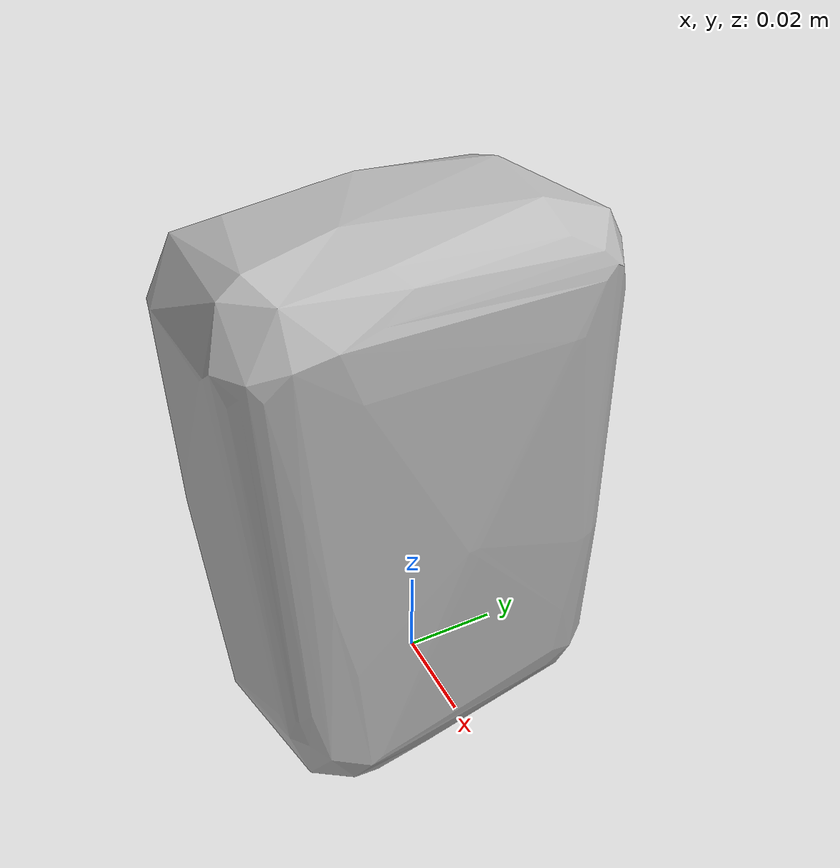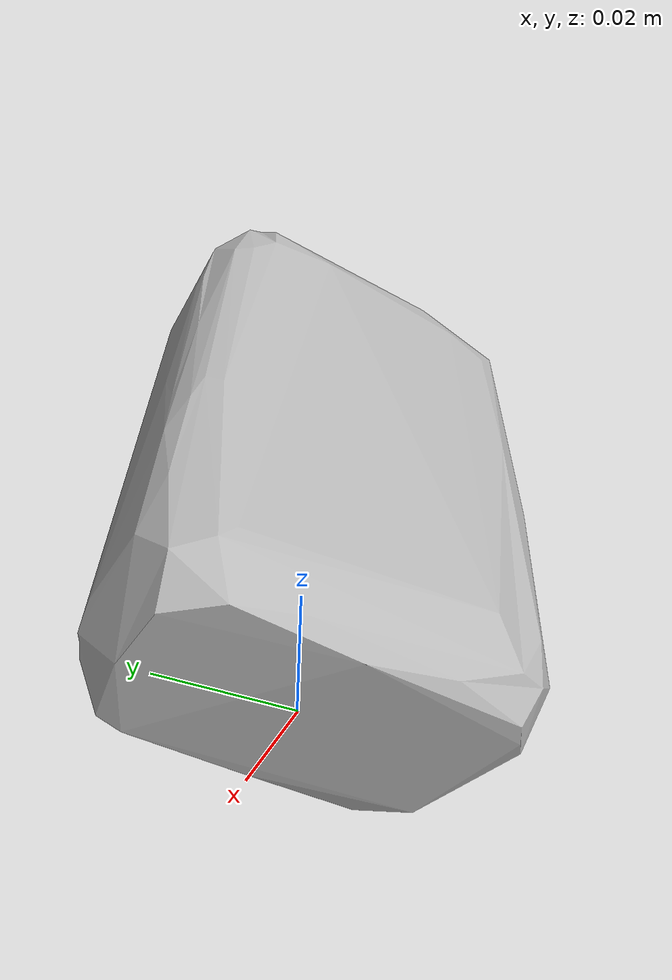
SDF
<?xml version='1.0'?>
<sdf version="1.4">
  <model name="band_aid_sheer_strips">
    <static>false</static>
    <link name="link">
      <inertial>
        <pose>0.007160877226341851 -0.005513237960493619 0.05256480059420958 -0.02513085394676984 0.045619593666573935 -3.0834685056173665</pose>
        <mass>0.03946361469719523</mass>
        <inertia>
          <ixx>5.0587310847959835e-05</ixx>
          <ixy>1.6765625195826279e-21</ixy>
          <ixz>-4.4776608545093635e-22</ixz>
          <iyy>4.057827973222988e-05</iyy>
          <iyz>-4.346700266914121e-21</iyz>
          <izz>2.7678723801457197e-05</izz>
        </inertia>
      </inertial>
      <collision name="collision">
        <geometry>
          <mesh>
            <!-- Use a downsampled mesh for collisions -->
            <uri>model:///band_aid_sheer_strips/band_aid_sheer_strips_250_collision.obj</uri>
	        </mesh>
        </geometry>
        <surface>
      </surface>
      </collision>
      <visual name="visual">
        <geometry>
          <mesh>
            <uri>model:///band_aid_sheer_strips/optimized_tsdf_texture_mapped_mesh.obj</uri>
	        </mesh>
        </geometry>
        <material>
          <script>
            <uri>model:///band_aid_sheer_strips/band_aid_sheer_strips.material</uri>
            <name>band_aid_sheer_strips</name>
          </script>
        </material>
      </visual>
    </link>
  </model>
</sdf>
